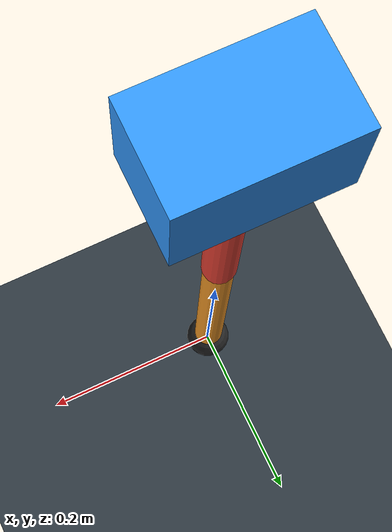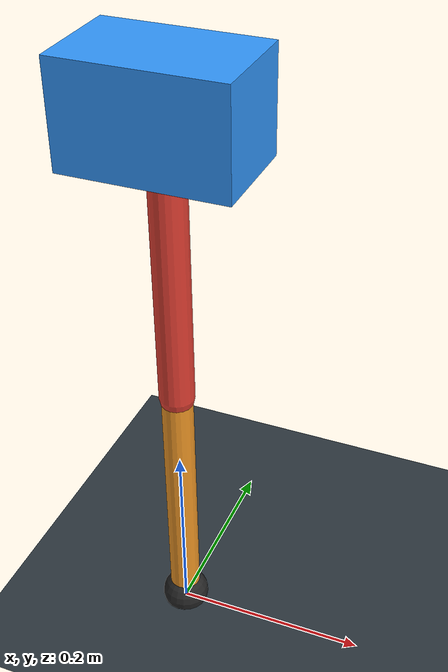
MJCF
<mujoco model="single_axis_two_bar">
  <compiler angle="radian" inertiafromgeom="true"/>
  <option timestep="0.001" integrator="implicitfast" gravity="0 0 -9.81"/>
  <default>
    <joint damping="0.08"/>
    <geom friction="1.2 0.01 0.0001" condim="3"/>
  </default>
  <worldbody>
    <geom name="floor" type="plane" size="5 5 0.1" rgba="0.18 0.22 0.25 1"/>
    <body name="carriage" pos="0 0 0.5800207132666478">
      <joint name="pole_slide" type="slide" axis="0 0 1"/>
      <geom name="payload" type="box" size="0.08 0.05 0.05" mass="3.358258010989972" rgba="0.2 0.6 1 1"/>
      <body name="thigh" pos="0 0 0">
        <joint name="hip" type="hinge" axis="0 1 0"/>
        <geom name="thigh_link" type="capsule" fromto="0 0 0 0 0 -0.2970218381631642" size="0.018" mass="0.21163198448856735" rgba="0.9 0.25 0.2 1"/>
        <body name="shank" pos="0 0 -0.2970218381631642">
          <joint name="knee" type="hinge" axis="0 1 0"/>
          <geom name="shank_link" type="capsule" fromto="0 0 0 0 0 -0.2751644641735862" size="0.016" mass="0.19605831670127788" rgba="0.95 0.6 0.15 1"/>
          <geom name="foot" type="sphere" pos="0 0 -0.2751644641735862" size="0.025" mass="0.03" rgba="0.15 0.15 0.15 1"/>
          <site name="toe" pos="0 0 -0.2751644641735862" size="0.008"/>
        </body>
      </body>
    </body>
  </worldbody>
  <actuator>
    <motor name="hip_motor" joint="hip" ctrlrange="-49.75007643733476 49.75007643733476"/>
    <motor name="knee_motor" joint="knee" ctrlrange="-28.07334904385633 28.07334904385633"/>
  </actuator>
</mujoco>
